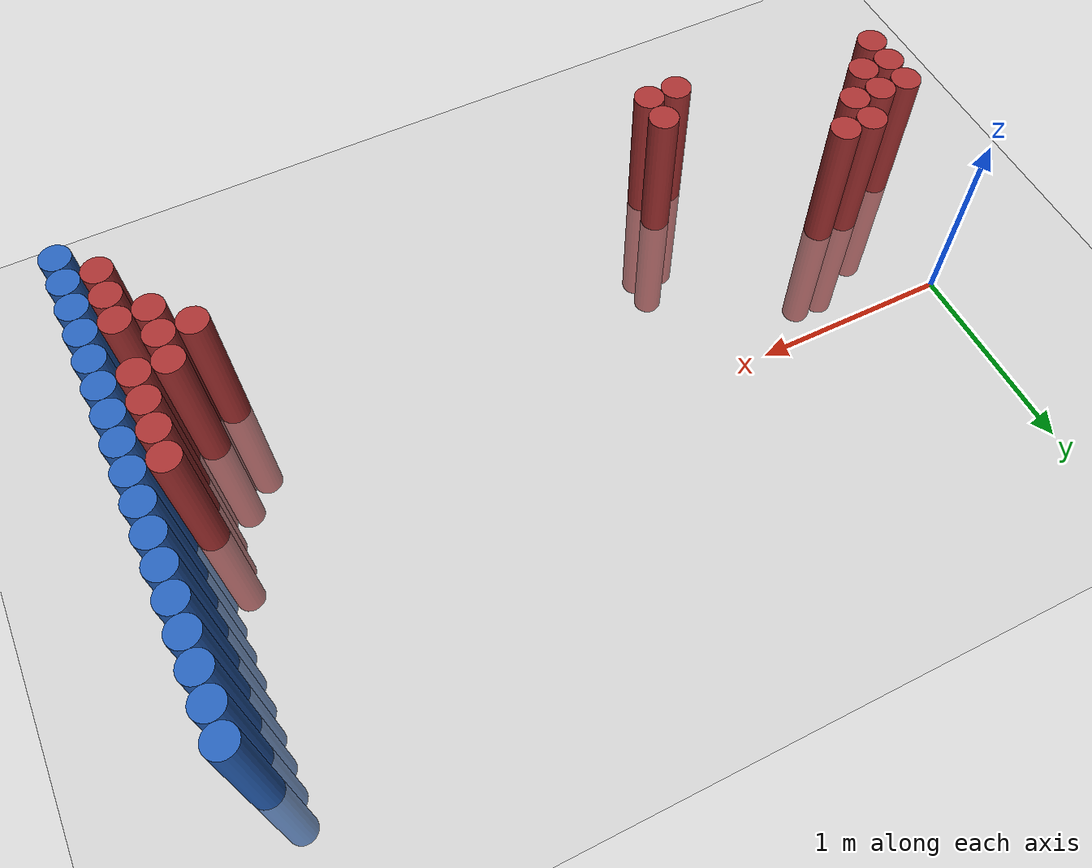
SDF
<sdf version="1.6">
 <world name="default">
  <model name="ground_plane">
   <static>1</static>
   <link name="link">
    <collision name="collision">
     <geometry><plane><normal>0 0 1</normal><size>100 100</size></plane></geometry>
     <surface><friction><ode><mu>100</mu><mu2>50</mu2></ode></friction></surface>
    </collision>
    <visual name="visual">
     <cast_shadows>0</cast_shadows>
     <geometry><plane><normal>0 0 1</normal><size>100 100</size></plane></geometry>
     <material>
      <script><uri>file://media/materials/scripts/gazebo.material</uri><name>Gazebo/Grey</name></script>
     </material>
    </visual>
   </link>
  </model>
  <model name="unit_cylinder_96">
   <static>1</static>
   <pose>3.925000 -1.325000 0.000000 0.000000 0.000000 0.000000</pose>
   <link name="link">
    <inertial>
     <mass>1</mass>
     <inertia><ixx>0.145833</ixx><ixy>0</ixy><ixz>0</ixz><iyy>0.145833</iyy><iyz>0</iyz><izz>0.125</izz></inertia>
    </inertial>
    <collision name="collision">
     <geometry><cylinder><radius>0.075000</radius><length>1.5</length></cylinder></geometry>
    </collision>
    <visual name="visual">
     <geometry><cylinder><radius>0.075000</radius><length>1.5</length></cylinder></geometry>
     <material>
      <ambient>0.152000 0.379000 0.720000 1</ambient>
      <diffuse>0.152000 0.379000 0.720000 1</diffuse>
     </material>
     <material>
      <script><name>Gazebo/Grey</name><uri>file://media/materials/scripts/gazebo.material</uri></script>
     </material>
    </visual>
   </link>
  </model>
  <model name="unit_cylinder_98">
   <static>1</static>
   <pose>3.925000 -1.175000 0.000000 0.000000 0.000000 0.000000</pose>
   <link name="link">
    <inertial>
     <mass>1</mass>
     <inertia><ixx>0.145833</ixx><ixy>0</ixy><ixz>0</ixz><iyy>0.145833</iyy><iyz>0</iyz><izz>0.125</izz></inertia>
    </inertial>
    <collision name="collision">
     <geometry><cylinder><radius>0.075000</radius><length>1.5</length></cylinder></geometry>
    </collision>
    <visual name="visual">
     <geometry><cylinder><radius>0.075000</radius><length>1.5</length></cylinder></geometry>
     <material>
      <ambient>0.152000 0.379000 0.720000 1</ambient>
      <diffuse>0.152000 0.379000 0.720000 1</diffuse>
     </material>
     <material>
      <script><name>Gazebo/Grey</name><uri>file://media/materials/scripts/gazebo.material</uri></script>
     </material>
    </visual>
   </link>
  </model>
  <model name="unit_cylinder_100">
   <static>1</static>
   <pose>3.925000 -1.025000 0.000000 0.000000 0.000000 0.000000</pose>
   <link name="link">
    <inertial>
     <mass>1</mass>
     <inertia><ixx>0.145833</ixx><ixy>0</ixy><ixz>0</ixz><iyy>0.145833</iyy><iyz>0</iyz><izz>0.125</izz></inertia>
    </inertial>
    <collision name="collision">
     <geometry><cylinder><radius>0.075000</radius><length>1.5</length></cylinder></geometry>
    </collision>
    <visual name="visual">
     <geometry><cylinder><radius>0.075000</radius><length>1.5</length></cylinder></geometry>
     <material>
      <ambient>0.152000 0.379000 0.720000 1</ambient>
      <diffuse>0.152000 0.379000 0.720000 1</diffuse>
     </material>
     <material>
      <script><name>Gazebo/Grey</name><uri>file://media/materials/scripts/gazebo.material</uri></script>
     </material>
    </visual>
   </link>
  </model>
  <model name="unit_cylinder_102">
   <static>1</static>
   <pose>3.925000 -0.875000 0.000000 0.000000 0.000000 0.000000</pose>
   <link name="link">
    <inertial>
     <mass>1</mass>
     <inertia><ixx>0.145833</ixx><ixy>0</ixy><ixz>0</ixz><iyy>0.145833</iyy><iyz>0</iyz><izz>0.125</izz></inertia>
    </inertial>
    <collision name="collision">
     <geometry><cylinder><radius>0.075000</radius><length>1.5</length></cylinder></geometry>
    </collision>
    <visual name="visual">
     <geometry><cylinder><radius>0.075000</radius><length>1.5</length></cylinder></geometry>
     <material>
      <ambient>0.152000 0.379000 0.720000 1</ambient>
      <diffuse>0.152000 0.379000 0.720000 1</diffuse>
     </material>
     <material>
      <script><name>Gazebo/Grey</name><uri>file://media/materials/scripts/gazebo.material</uri></script>
     </material>
    </visual>
   </link>
  </model>
  <model name="unit_cylinder_104">
   <static>1</static>
   <pose>3.925000 -0.725000 0.000000 0.000000 0.000000 0.000000</pose>
   <link name="link">
    <inertial>
     <mass>1</mass>
     <inertia><ixx>0.145833</ixx><ixy>0</ixy><ixz>0</ixz><iyy>0.145833</iyy><iyz>0</iyz><izz>0.125</izz></inertia>
    </inertial>
    <collision name="collision">
     <geometry><cylinder><radius>0.075000</radius><length>1.5</length></cylinder></geometry>
    </collision>
    <visual name="visual">
     <geometry><cylinder><radius>0.075000</radius><length>1.5</length></cylinder></geometry>
     <material>
      <ambient>0.152000 0.379000 0.720000 1</ambient>
      <diffuse>0.152000 0.379000 0.720000 1</diffuse>
     </material>
     <material>
      <script><name>Gazebo/Grey</name><uri>file://media/materials/scripts/gazebo.material</uri></script>
     </material>
    </visual>
   </link>
  </model>
  <model name="unit_cylinder_106">
   <static>1</static>
   <pose>3.925000 -0.575000 0.000000 0.000000 0.000000 0.000000</pose>
   <link name="link">
    <inertial>
     <mass>1</mass>
     <inertia><ixx>0.145833</ixx><ixy>0</ixy><ixz>0</ixz><iyy>0.145833</iyy><iyz>0</iyz><izz>0.125</izz></inertia>
    </inertial>
    <collision name="collision">
     <geometry><cylinder><radius>0.075000</radius><length>1.5</length></cylinder></geometry>
    </collision>
    <visual name="visual">
     <geometry><cylinder><radius>0.075000</radius><length>1.5</length></cylinder></geometry>
     <material>
      <ambient>0.152000 0.379000 0.720000 1</ambient>
      <diffuse>0.152000 0.379000 0.720000 1</diffuse>
     </material>
     <material>
      <script><name>Gazebo/Grey</name><uri>file://media/materials/scripts/gazebo.material</uri></script>
     </material>
    </visual>
   </link>
  </model>
  <model name="unit_cylinder_108">
   <static>1</static>
   <pose>3.925000 -0.425000 0.000000 0.000000 0.000000 0.000000</pose>
   <link name="link">
    <inertial>
     <mass>1</mass>
     <inertia><ixx>0.145833</ixx><ixy>0</ixy><ixz>0</ixz><iyy>0.145833</iyy><iyz>0</iyz><izz>0.125</izz></inertia>
    </inertial>
    <collision name="collision">
     <geometry><cylinder><radius>0.075000</radius><length>1.5</length></cylinder></geometry>
    </collision>
    <visual name="visual">
     <geometry><cylinder><radius>0.075000</radius><length>1.5</length></cylinder></geometry>
     <material>
      <ambient>0.152000 0.379000 0.720000 1</ambient>
      <diffuse>0.152000 0.379000 0.720000 1</diffuse>
     </material>
     <material>
      <script><name>Gazebo/Grey</name><uri>file://media/materials/scripts/gazebo.material</uri></script>
     </material>
    </visual>
   </link>
  </model>
  <model name="unit_cylinder_110">
   <static>1</static>
   <pose>3.925000 -0.275000 0.000000 0.000000 0.000000 0.000000</pose>
   <link name="link">
    <inertial>
     <mass>1</mass>
     <inertia><ixx>0.145833</ixx><ixy>0</ixy><ixz>0</ixz><iyy>0.145833</iyy><iyz>0</iyz><izz>0.125</izz></inertia>
    </inertial>
    <collision name="collision">
     <geometry><cylinder><radius>0.075000</radius><length>1.5</length></cylinder></geometry>
    </collision>
    <visual name="visual">
     <geometry><cylinder><radius>0.075000</radius><length>1.5</length></cylinder></geometry>
     <material>
      <ambient>0.152000 0.379000 0.720000 1</ambient>
      <diffuse>0.152000 0.379000 0.720000 1</diffuse>
     </material>
     <material>
      <script><name>Gazebo/Grey</name><uri>file://media/materials/scripts/gazebo.material</uri></script>
     </material>
    </visual>
   </link>
  </model>
  <model name="unit_cylinder_112">
   <static>1</static>
   <pose>3.925000 -0.125000 0.000000 0.000000 0.000000 0.000000</pose>
   <link name="link">
    <inertial>
     <mass>1</mass>
     <inertia><ixx>0.145833</ixx><ixy>0</ixy><ixz>0</ixz><iyy>0.145833</iyy><iyz>0</iyz><izz>0.125</izz></inertia>
    </inertial>
    <collision name="collision">
     <geometry><cylinder><radius>0.075000</radius><length>1.5</length></cylinder></geometry>
    </collision>
    <visual name="visual">
     <geometry><cylinder><radius>0.075000</radius><length>1.5</length></cylinder></geometry>
     <material>
      <ambient>0.152000 0.379000 0.720000 1</ambient>
      <diffuse>0.152000 0.379000 0.720000 1</diffuse>
     </material>
     <material>
      <script><name>Gazebo/Grey</name><uri>file://media/materials/scripts/gazebo.material</uri></script>
     </material>
    </visual>
   </link>
  </model>
  <model name="unit_cylinder_114">
   <static>1</static>
   <pose>3.925000 0.025000 0.000000 0.000000 0.000000 0.000000</pose>
   <link name="link">
    <inertial>
     <mass>1</mass>
     <inertia><ixx>0.145833</ixx><ixy>0</ixy><ixz>0</ixz><iyy>0.145833</iyy><iyz>0</iyz><izz>0.125</izz></inertia>
    </inertial>
    <collision name="collision">
     <geometry><cylinder><radius>0.075000</radius><length>1.5</length></cylinder></geometry>
    </collision>
    <visual name="visual">
     <geometry><cylinder><radius>0.075000</radius><length>1.5</length></cylinder></geometry>
     <material>
      <ambient>0.152000 0.379000 0.720000 1</ambient>
      <diffuse>0.152000 0.379000 0.720000 1</diffuse>
     </material>
     <material>
      <script><name>Gazebo/Grey</name><uri>file://media/materials/scripts/gazebo.material</uri></script>
     </material>
    </visual>
   </link>
  </model>
  <model name="unit_cylinder_116">
   <static>1</static>
   <pose>3.925000 0.175000 0.000000 0.000000 0.000000 0.000000</pose>
   <link name="link">
    <inertial>
     <mass>1</mass>
     <inertia><ixx>0.145833</ixx><ixy>0</ixy><ixz>0</ixz><iyy>0.145833</iyy><iyz>0</iyz><izz>0.125</izz></inertia>
    </inertial>
    <collision name="collision">
     <geometry><cylinder><radius>0.075000</radius><length>1.5</length></cylinder></geometry>
    </collision>
    <visual name="visual">
     <geometry><cylinder><radius>0.075000</radius><length>1.5</length></cylinder></geometry>
     <material>
      <ambient>0.152000 0.379000 0.720000 1</ambient>
      <diffuse>0.152000 0.379000 0.720000 1</diffuse>
     </material>
     <material>
      <script><name>Gazebo/Grey</name><uri>file://media/materials/scripts/gazebo.material</uri></script>
     </material>
    </visual>
   </link>
  </model>
  <model name="unit_cylinder_118">
   <static>1</static>
   <pose>3.925000 0.325000 0.000000 0.000000 0.000000 0.000000</pose>
   <link name="link">
    <inertial>
     <mass>1</mass>
     <inertia><ixx>0.145833</ixx><ixy>0</ixy><ixz>0</ixz><iyy>0.145833</iyy><iyz>0</iyz><izz>0.125</izz></inertia>
    </inertial>
    <collision name="collision">
     <geometry><cylinder><radius>0.075000</radius><length>1.5</length></cylinder></geometry>
    </collision>
    <visual name="visual">
     <geometry><cylinder><radius>0.075000</radius><length>1.5</length></cylinder></geometry>
     <material>
      <ambient>0.152000 0.379000 0.720000 1</ambient>
      <diffuse>0.152000 0.379000 0.720000 1</diffuse>
     </material>
     <material>
      <script><name>Gazebo/Grey</name><uri>file://media/materials/scripts/gazebo.material</uri></script>
     </material>
    </visual>
   </link>
  </model>
  <model name="unit_cylinder_120">
   <static>1</static>
   <pose>3.925000 0.475000 0.000000 0.000000 0.000000 0.000000</pose>
   <link name="link">
    <inertial>
     <mass>1</mass>
     <inertia><ixx>0.145833</ixx><ixy>0</ixy><ixz>0</ixz><iyy>0.145833</iyy><iyz>0</iyz><izz>0.125</izz></inertia>
    </inertial>
    <collision name="collision">
     <geometry><cylinder><radius>0.075000</radius><length>1.5</length></cylinder></geometry>
    </collision>
    <visual name="visual">
     <geometry><cylinder><radius>0.075000</radius><length>1.5</length></cylinder></geometry>
     <material>
      <ambient>0.152000 0.379000 0.720000 1</ambient>
      <diffuse>0.152000 0.379000 0.720000 1</diffuse>
     </material>
     <material>
      <script><name>Gazebo/Grey</name><uri>file://media/materials/scripts/gazebo.material</uri></script>
     </material>
    </visual>
   </link>
  </model>
  <model name="unit_cylinder_122">
   <static>1</static>
   <pose>3.925000 0.625000 0.000000 0.000000 0.000000 0.000000</pose>
   <link name="link">
    <inertial>
     <mass>1</mass>
     <inertia><ixx>0.145833</ixx><ixy>0</ixy><ixz>0</ixz><iyy>0.145833</iyy><iyz>0</iyz><izz>0.125</izz></inertia>
    </inertial>
    <collision name="collision">
     <geometry><cylinder><radius>0.075000</radius><length>1.5</length></cylinder></geometry>
    </collision>
    <visual name="visual">
     <geometry><cylinder><radius>0.075000</radius><length>1.5</length></cylinder></geometry>
     <material>
      <ambient>0.152000 0.379000 0.720000 1</ambient>
      <diffuse>0.152000 0.379000 0.720000 1</diffuse>
     </material>
     <material>
      <script><name>Gazebo/Grey</name><uri>file://media/materials/scripts/gazebo.material</uri></script>
     </material>
    </visual>
   </link>
  </model>
  <model name="unit_cylinder_124">
   <static>1</static>
   <pose>3.925000 0.775000 0.000000 0.000000 0.000000 0.000000</pose>
   <link name="link">
    <inertial>
     <mass>1</mass>
     <inertia><ixx>0.145833</ixx><ixy>0</ixy><ixz>0</ixz><iyy>0.145833</iyy><iyz>0</iyz><izz>0.125</izz></inertia>
    </inertial>
    <collision name="collision">
     <geometry><cylinder><radius>0.075000</radius><length>1.5</length></cylinder></geometry>
    </collision>
    <visual name="visual">
     <geometry><cylinder><radius>0.075000</radius><length>1.5</length></cylinder></geometry>
     <material>
      <ambient>0.152000 0.379000 0.720000 1</ambient>
      <diffuse>0.152000 0.379000 0.720000 1</diffuse>
     </material>
     <material>
      <script><name>Gazebo/Grey</name><uri>file://media/materials/scripts/gazebo.material</uri></script>
     </material>
    </visual>
   </link>
  </model>
  <model name="unit_cylinder_126">
   <static>1</static>
   <pose>3.925000 0.925000 0.000000 0.000000 0.000000 0.000000</pose>
   <link name="link">
    <inertial>
     <mass>1</mass>
     <inertia><ixx>0.145833</ixx><ixy>0</ixy><ixz>0</ixz><iyy>0.145833</iyy><iyz>0</iyz><izz>0.125</izz></inertia>
    </inertial>
    <collision name="collision">
     <geometry><cylinder><radius>0.075000</radius><length>1.5</length></cylinder></geometry>
    </collision>
    <visual name="visual">
     <geometry><cylinder><radius>0.075000</radius><length>1.5</length></cylinder></geometry>
     <material>
      <ambient>0.152000 0.379000 0.720000 1</ambient>
      <diffuse>0.152000 0.379000 0.720000 1</diffuse>
     </material>
     <material>
      <script><name>Gazebo/Grey</name><uri>file://media/materials/scripts/gazebo.material</uri></script>
     </material>
    </visual>
   </link>
  </model>
  <model name="unit_cylinder_315">
   <static>1</static>
   <pose>-0.125000 -1.025000 0.000000 0.000000 0.000000 0.000000</pose>
   <link name="link">
    <inertial>
     <mass>1</mass>
     <inertia><ixx>0.145833</ixx><ixy>0</ixy><ixz>0</ixz><iyy>0.145833</iyy><iyz>0</iyz><izz>0.125</izz></inertia>
    </inertial>
    <collision name="collision">
     <geometry><cylinder><radius>0.075000</radius><length>1.5</length></cylinder></geometry>
    </collision>
    <visual name="visual">
     <geometry><cylinder><radius>0.075000</radius><length>1.5</length></cylinder></geometry>
     <material>
      <ambient>0.648000 0.192000 0.192000 1</ambient>
      <diffuse>0.648000 0.192000 0.192000 1</diffuse>
     </material>
     <material>
      <script><name>Gazebo/Grey</name><uri>file://media/materials/scripts/gazebo.material</uri></script>
     </material>
    </visual>
   </link>
  </model>
  <model name="unit_cylinder_316">
   <static>1</static>
   <pose>-0.125000 -0.875000 0.000000 0.000000 0.000000 0.000000</pose>
   <link name="link">
    <inertial>
     <mass>1</mass>
     <inertia><ixx>0.145833</ixx><ixy>0</ixy><ixz>0</ixz><iyy>0.145833</iyy><iyz>0</iyz><izz>0.125</izz></inertia>
    </inertial>
    <collision name="collision">
     <geometry><cylinder><radius>0.075000</radius><length>1.5</length></cylinder></geometry>
    </collision>
    <visual name="visual">
     <geometry><cylinder><radius>0.075000</radius><length>1.5</length></cylinder></geometry>
     <material>
      <ambient>0.648000 0.192000 0.192000 1</ambient>
      <diffuse>0.648000 0.192000 0.192000 1</diffuse>
     </material>
     <material>
      <script><name>Gazebo/Grey</name><uri>file://media/materials/scripts/gazebo.material</uri></script>
     </material>
    </visual>
   </link>
  </model>
  <model name="unit_cylinder_317">
   <static>1</static>
   <pose>-0.125000 -0.725000 0.000000 0.000000 0.000000 0.000000</pose>
   <link name="link">
    <inertial>
     <mass>1</mass>
     <inertia><ixx>0.145833</ixx><ixy>0</ixy><ixz>0</ixz><iyy>0.145833</iyy><iyz>0</iyz><izz>0.125</izz></inertia>
    </inertial>
    <collision name="collision">
     <geometry><cylinder><radius>0.075000</radius><length>1.5</length></cylinder></geometry>
    </collision>
    <visual name="visual">
     <geometry><cylinder><radius>0.075000</radius><length>1.5</length></cylinder></geometry>
     <material>
      <ambient>0.648000 0.192000 0.192000 1</ambient>
      <diffuse>0.648000 0.192000 0.192000 1</diffuse>
     </material>
     <material>
      <script><name>Gazebo/Grey</name><uri>file://media/materials/scripts/gazebo.material</uri></script>
     </material>
    </visual>
   </link>
  </model>
  <model name="unit_cylinder_318">
   <static>1</static>
   <pose>0.025000 -0.875000 0.000000 0.000000 0.000000 0.000000</pose>
   <link name="link">
    <inertial>
     <mass>1</mass>
     <inertia><ixx>0.145833</ixx><ixy>0</ixy><ixz>0</ixz><iyy>0.145833</iyy><iyz>0</iyz><izz>0.125</izz></inertia>
    </inertial>
    <collision name="collision">
     <geometry><cylinder><radius>0.075000</radius><length>1.5</length></cylinder></geometry>
    </collision>
    <visual name="visual">
     <geometry><cylinder><radius>0.075000</radius><length>1.5</length></cylinder></geometry>
     <material>
      <ambient>0.648000 0.192000 0.192000 1</ambient>
      <diffuse>0.648000 0.192000 0.192000 1</diffuse>
     </material>
     <material>
      <script><name>Gazebo/Grey</name><uri>file://media/materials/scripts/gazebo.material</uri></script>
     </material>
    </visual>
   </link>
  </model>
  <model name="unit_cylinder_319">
   <static>1</static>
   <pose>0.025000 -0.725000 0.000000 0.000000 0.000000 0.000000</pose>
   <link name="link">
    <inertial>
     <mass>1</mass>
     <inertia><ixx>0.145833</ixx><ixy>0</ixy><ixz>0</ixz><iyy>0.145833</iyy><iyz>0</iyz><izz>0.125</izz></inertia>
    </inertial>
    <collision name="collision">
     <geometry><cylinder><radius>0.075000</radius><length>1.5</length></cylinder></geometry>
    </collision>
    <visual name="visual">
     <geometry><cylinder><radius>0.075000</radius><length>1.5</length></cylinder></geometry>
     <material>
      <ambient>0.648000 0.192000 0.192000 1</ambient>
      <diffuse>0.648000 0.192000 0.192000 1</diffuse>
     </material>
     <material>
      <script><name>Gazebo/Grey</name><uri>file://media/materials/scripts/gazebo.material</uri></script>
     </material>
    </visual>
   </link>
  </model>
  <model name="unit_cylinder_320">
   <static>1</static>
   <pose>0.175000 -0.725000 0.000000 0.000000 0.000000 0.000000</pose>
   <link name="link">
    <inertial>
     <mass>1</mass>
     <inertia><ixx>0.145833</ixx><ixy>0</ixy><ixz>0</ixz><iyy>0.145833</iyy><iyz>0</iyz><izz>0.125</izz></inertia>
    </inertial>
    <collision name="collision">
     <geometry><cylinder><radius>0.075000</radius><length>1.5</length></cylinder></geometry>
    </collision>
    <visual name="visual">
     <geometry><cylinder><radius>0.075000</radius><length>1.5</length></cylinder></geometry>
     <material>
      <ambient>0.648000 0.192000 0.192000 1</ambient>
      <diffuse>0.648000 0.192000 0.192000 1</diffuse>
     </material>
     <material>
      <script><name>Gazebo/Grey</name><uri>file://media/materials/scripts/gazebo.material</uri></script>
     </material>
    </visual>
   </link>
  </model>
  <model name="unit_cylinder_321">
   <static>1</static>
   <pose>0.175000 -0.575000 0.000000 0.000000 0.000000 0.000000</pose>
   <link name="link">
    <inertial>
     <mass>1</mass>
     <inertia><ixx>0.145833</ixx><ixy>0</ixy><ixz>0</ixz><iyy>0.145833</iyy><iyz>0</iyz><izz>0.125</izz></inertia>
    </inertial>
    <collision name="collision">
     <geometry><cylinder><radius>0.075000</radius><length>1.5</length></cylinder></geometry>
    </collision>
    <visual name="visual">
     <geometry><cylinder><radius>0.075000</radius><length>1.5</length></cylinder></geometry>
     <material>
      <ambient>0.648000 0.192000 0.192000 1</ambient>
      <diffuse>0.648000 0.192000 0.192000 1</diffuse>
     </material>
     <material>
      <script><name>Gazebo/Grey</name><uri>file://media/materials/scripts/gazebo.material</uri></script>
     </material>
    </visual>
   </link>
  </model>
  <model name="unit_cylinder_324">
   <static>1</static>
   <pose>0.325000 -0.575000 0.000000 0.000000 0.000000 0.000000</pose>
   <link name="link">
    <inertial>
     <mass>1</mass>
     <inertia><ixx>0.145833</ixx><ixy>0</ixy><ixz>0</ixz><iyy>0.145833</iyy><iyz>0</iyz><izz>0.125</izz></inertia>
    </inertial>
    <collision name="collision">
     <geometry><cylinder><radius>0.075000</radius><length>1.5</length></cylinder></geometry>
    </collision>
    <visual name="visual">
     <geometry><cylinder><radius>0.075000</radius><length>1.5</length></cylinder></geometry>
     <material>
      <ambient>0.648000 0.192000 0.192000 1</ambient>
      <diffuse>0.648000 0.192000 0.192000 1</diffuse>
     </material>
     <material>
      <script><name>Gazebo/Grey</name><uri>file://media/materials/scripts/gazebo.material</uri></script>
     </material>
    </visual>
   </link>
  </model>
  <model name="unit_cylinder_327">
   <static>1</static>
   <pose>0.925000 -1.175000 0.000000 0.000000 0.000000 0.000000</pose>
   <link name="link">
    <inertial>
     <mass>1</mass>
     <inertia><ixx>0.145833</ixx><ixy>0</ixy><ixz>0</ixz><iyy>0.145833</iyy><iyz>0</iyz><izz>0.125</izz></inertia>
    </inertial>
    <collision name="collision">
     <geometry><cylinder><radius>0.075000</radius><length>1.5</length></cylinder></geometry>
    </collision>
    <visual name="visual">
     <geometry><cylinder><radius>0.075000</radius><length>1.5</length></cylinder></geometry>
     <material>
      <ambient>0.648000 0.192000 0.192000 1</ambient>
      <diffuse>0.648000 0.192000 0.192000 1</diffuse>
     </material>
     <material>
      <script><name>Gazebo/Grey</name><uri>file://media/materials/scripts/gazebo.material</uri></script>
     </material>
    </visual>
   </link>
  </model>
  <model name="unit_cylinder_331">
   <static>1</static>
   <pose>1.075000 -1.175000 0.000000 0.000000 0.000000 0.000000</pose>
   <link name="link">
    <inertial>
     <mass>1</mass>
     <inertia><ixx>0.145833</ixx><ixy>0</ixy><ixz>0</ixz><iyy>0.145833</iyy><iyz>0</iyz><izz>0.125</izz></inertia>
    </inertial>
    <collision name="collision">
     <geometry><cylinder><radius>0.075000</radius><length>1.5</length></cylinder></geometry>
    </collision>
    <visual name="visual">
     <geometry><cylinder><radius>0.075000</radius><length>1.5</length></cylinder></geometry>
     <material>
      <ambient>0.648000 0.192000 0.192000 1</ambient>
      <diffuse>0.648000 0.192000 0.192000 1</diffuse>
     </material>
     <material>
      <script><name>Gazebo/Grey</name><uri>file://media/materials/scripts/gazebo.material</uri></script>
     </material>
    </visual>
   </link>
  </model>
  <model name="unit_cylinder_332">
   <static>1</static>
   <pose>1.075000 -1.025000 0.000000 0.000000 0.000000 0.000000</pose>
   <link name="link">
    <inertial>
     <mass>1</mass>
     <inertia><ixx>0.145833</ixx><ixy>0</ixy><ixz>0</ixz><iyy>0.145833</iyy><iyz>0</iyz><izz>0.125</izz></inertia>
    </inertial>
    <collision name="collision">
     <geometry><cylinder><radius>0.075000</radius><length>1.5</length></cylinder></geometry>
    </collision>
    <visual name="visual">
     <geometry><cylinder><radius>0.075000</radius><length>1.5</length></cylinder></geometry>
     <material>
      <ambient>0.648000 0.192000 0.192000 1</ambient>
      <diffuse>0.648000 0.192000 0.192000 1</diffuse>
     </material>
     <material>
      <script><name>Gazebo/Grey</name><uri>file://media/materials/scripts/gazebo.material</uri></script>
     </material>
    </visual>
   </link>
  </model>
  <model name="unit_cylinder_359">
   <static>1</static>
   <pose>3.475000 -0.875000 0.000000 0.000000 0.000000 0.000000</pose>
   <link name="link">
    <inertial>
     <mass>1</mass>
     <inertia><ixx>0.145833</ixx><ixy>0</ixy><ixz>0</ixz><iyy>0.145833</iyy><iyz>0</iyz><izz>0.125</izz></inertia>
    </inertial>
    <collision name="collision">
     <geometry><cylinder><radius>0.075000</radius><length>1.5</length></cylinder></geometry>
    </collision>
    <visual name="visual">
     <geometry><cylinder><radius>0.075000</radius><length>1.5</length></cylinder></geometry>
     <material>
      <ambient>0.648000 0.192000 0.192000 1</ambient>
      <diffuse>0.648000 0.192000 0.192000 1</diffuse>
     </material>
     <material>
      <script><name>Gazebo/Grey</name><uri>file://media/materials/scripts/gazebo.material</uri></script>
     </material>
    </visual>
   </link>
  </model>
  <model name="unit_cylinder_362">
   <static>1</static>
   <pose>3.625000 -1.025000 0.000000 0.000000 0.000000 0.000000</pose>
   <link name="link">
    <inertial>
     <mass>1</mass>
     <inertia><ixx>0.145833</ixx><ixy>0</ixy><ixz>0</ixz><iyy>0.145833</iyy><iyz>0</iyz><izz>0.125</izz></inertia>
    </inertial>
    <collision name="collision">
     <geometry><cylinder><radius>0.075000</radius><length>1.5</length></cylinder></geometry>
    </collision>
    <visual name="visual">
     <geometry><cylinder><radius>0.075000</radius><length>1.5</length></cylinder></geometry>
     <material>
      <ambient>0.648000 0.192000 0.192000 1</ambient>
      <diffuse>0.648000 0.192000 0.192000 1</diffuse>
     </material>
     <material>
      <script><name>Gazebo/Grey</name><uri>file://media/materials/scripts/gazebo.material</uri></script>
     </material>
    </visual>
   </link>
  </model>
  <model name="unit_cylinder_363">
   <static>1</static>
   <pose>3.625000 -0.875000 0.000000 0.000000 0.000000 0.000000</pose>
   <link name="link">
    <inertial>
     <mass>1</mass>
     <inertia><ixx>0.145833</ixx><ixy>0</ixy><ixz>0</ixz><iyy>0.145833</iyy><iyz>0</iyz><izz>0.125</izz></inertia>
    </inertial>
    <collision name="collision">
     <geometry><cylinder><radius>0.075000</radius><length>1.5</length></cylinder></geometry>
    </collision>
    <visual name="visual">
     <geometry><cylinder><radius>0.075000</radius><length>1.5</length></cylinder></geometry>
     <material>
      <ambient>0.648000 0.192000 0.192000 1</ambient>
      <diffuse>0.648000 0.192000 0.192000 1</diffuse>
     </material>
     <material>
      <script><name>Gazebo/Grey</name><uri>file://media/materials/scripts/gazebo.material</uri></script>
     </material>
    </visual>
   </link>
  </model>
  <model name="unit_cylinder_364">
   <static>1</static>
   <pose>3.625000 -0.725000 0.000000 0.000000 0.000000 0.000000</pose>
   <link name="link">
    <inertial>
     <mass>1</mass>
     <inertia><ixx>0.145833</ixx><ixy>0</ixy><ixz>0</ixz><iyy>0.145833</iyy><iyz>0</iyz><izz>0.125</izz></inertia>
    </inertial>
    <collision name="collision">
     <geometry><cylinder><radius>0.075000</radius><length>1.5</length></cylinder></geometry>
    </collision>
    <visual name="visual">
     <geometry><cylinder><radius>0.075000</radius><length>1.5</length></cylinder></geometry>
     <material>
      <ambient>0.648000 0.192000 0.192000 1</ambient>
      <diffuse>0.648000 0.192000 0.192000 1</diffuse>
     </material>
     <material>
      <script><name>Gazebo/Grey</name><uri>file://media/materials/scripts/gazebo.material</uri></script>
     </material>
    </visual>
   </link>
  </model>
  <model name="unit_cylinder_367">
   <static>1</static>
   <pose>3.775000 -1.325000 0.000000 0.000000 0.000000 0.000000</pose>
   <link name="link">
    <inertial>
     <mass>1</mass>
     <inertia><ixx>0.145833</ixx><ixy>0</ixy><ixz>0</ixz><iyy>0.145833</iyy><iyz>0</iyz><izz>0.125</izz></inertia>
    </inertial>
    <collision name="collision">
     <geometry><cylinder><radius>0.075000</radius><length>1.5</length></cylinder></geometry>
    </collision>
    <visual name="visual">
     <geometry><cylinder><radius>0.075000</radius><length>1.5</length></cylinder></geometry>
     <material>
      <ambient>0.648000 0.192000 0.192000 1</ambient>
      <diffuse>0.648000 0.192000 0.192000 1</diffuse>
     </material>
     <material>
      <script><name>Gazebo/Grey</name><uri>file://media/materials/scripts/gazebo.material</uri></script>
     </material>
    </visual>
   </link>
  </model>
  <model name="unit_cylinder_368">
   <static>1</static>
   <pose>3.775000 -1.175000 0.000000 0.000000 0.000000 0.000000</pose>
   <link name="link">
    <inertial>
     <mass>1</mass>
     <inertia><ixx>0.145833</ixx><ixy>0</ixy><ixz>0</ixz><iyy>0.145833</iyy><iyz>0</iyz><izz>0.125</izz></inertia>
    </inertial>
    <collision name="collision">
     <geometry><cylinder><radius>0.075000</radius><length>1.5</length></cylinder></geometry>
    </collision>
    <visual name="visual">
     <geometry><cylinder><radius>0.075000</radius><length>1.5</length></cylinder></geometry>
     <material>
      <ambient>0.648000 0.192000 0.192000 1</ambient>
      <diffuse>0.648000 0.192000 0.192000 1</diffuse>
     </material>
     <material>
      <script><name>Gazebo/Grey</name><uri>file://media/materials/scripts/gazebo.material</uri></script>
     </material>
    </visual>
   </link>
  </model>
  <model name="unit_cylinder_369">
   <static>1</static>
   <pose>3.775000 -1.025000 0.000000 0.000000 0.000000 0.000000</pose>
   <link name="link">
    <inertial>
     <mass>1</mass>
     <inertia><ixx>0.145833</ixx><ixy>0</ixy><ixz>0</ixz><iyy>0.145833</iyy><iyz>0</iyz><izz>0.125</izz></inertia>
    </inertial>
    <collision name="collision">
     <geometry><cylinder><radius>0.075000</radius><length>1.5</length></cylinder></geometry>
    </collision>
    <visual name="visual">
     <geometry><cylinder><radius>0.075000</radius><length>1.5</length></cylinder></geometry>
     <material>
      <ambient>0.648000 0.192000 0.192000 1</ambient>
      <diffuse>0.648000 0.192000 0.192000 1</diffuse>
     </material>
     <material>
      <script><name>Gazebo/Grey</name><uri>file://media/materials/scripts/gazebo.material</uri></script>
     </material>
    </visual>
   </link>
  </model>
  <model name="unit_cylinder_370">
   <static>1</static>
   <pose>3.775000 -0.725000 0.000000 0.000000 0.000000 0.000000</pose>
   <link name="link">
    <inertial>
     <mass>1</mass>
     <inertia><ixx>0.145833</ixx><ixy>0</ixy><ixz>0</ixz><iyy>0.145833</iyy><iyz>0</iyz><izz>0.125</izz></inertia>
    </inertial>
    <collision name="collision">
     <geometry><cylinder><radius>0.075000</radius><length>1.5</length></cylinder></geometry>
    </collision>
    <visual name="visual">
     <geometry><cylinder><radius>0.075000</radius><length>1.5</length></cylinder></geometry>
     <material>
      <ambient>0.648000 0.192000 0.192000 1</ambient>
      <diffuse>0.648000 0.192000 0.192000 1</diffuse>
     </material>
     <material>
      <script><name>Gazebo/Grey</name><uri>file://media/materials/scripts/gazebo.material</uri></script>
     </material>
    </visual>
   </link>
  </model>
  <model name="unit_cylinder_371">
   <static>1</static>
   <pose>3.775000 -0.575000 0.000000 0.000000 0.000000 0.000000</pose>
   <link name="link">
    <inertial>
     <mass>1</mass>
     <inertia><ixx>0.145833</ixx><ixy>0</ixy><ixz>0</ixz><iyy>0.145833</iyy><iyz>0</iyz><izz>0.125</izz></inertia>
    </inertial>
    <collision name="collision">
     <geometry><cylinder><radius>0.075000</radius><length>1.5</length></cylinder></geometry>
    </collision>
    <visual name="visual">
     <geometry><cylinder><radius>0.075000</radius><length>1.5</length></cylinder></geometry>
     <material>
      <ambient>0.648000 0.192000 0.192000 1</ambient>
      <diffuse>0.648000 0.192000 0.192000 1</diffuse>
     </material>
     <material>
      <script><name>Gazebo/Grey</name><uri>file://media/materials/scripts/gazebo.material</uri></script>
     </material>
    </visual>
   </link>
  </model>
  <model name="unit_cylinder_372">
   <static>1</static>
   <pose>3.775000 -0.425000 0.000000 0.000000 0.000000 0.000000</pose>
   <link name="link">
    <inertial>
     <mass>1</mass>
     <inertia><ixx>0.145833</ixx><ixy>0</ixy><ixz>0</ixz><iyy>0.145833</iyy><iyz>0</iyz><izz>0.125</izz></inertia>
    </inertial>
    <collision name="collision">
     <geometry><cylinder><radius>0.075000</radius><length>1.5</length></cylinder></geometry>
    </collision>
    <visual name="visual">
     <geometry><cylinder><radius>0.075000</radius><length>1.5</length></cylinder></geometry>
     <material>
      <ambient>0.648000 0.192000 0.192000 1</ambient>
      <diffuse>0.648000 0.192000 0.192000 1</diffuse>
     </material>
     <material>
      <script><name>Gazebo/Grey</name><uri>file://media/materials/scripts/gazebo.material</uri></script>
     </material>
    </visual>
   </link>
  </model>
  <model name="unit_cylinder_373">
   <static>1</static>
   <pose>3.775000 -0.275000 0.000000 0.000000 0.000000 0.000000</pose>
   <link name="link">
    <inertial>
     <mass>1</mass>
     <inertia><ixx>0.145833</ixx><ixy>0</ixy><ixz>0</ixz><iyy>0.145833</iyy><iyz>0</iyz><izz>0.125</izz></inertia>
    </inertial>
    <collision name="collision">
     <geometry><cylinder><radius>0.075000</radius><length>1.5</length></cylinder></geometry>
    </collision>
    <visual name="visual">
     <geometry><cylinder><radius>0.075000</radius><length>1.5</length></cylinder></geometry>
     <material>
      <ambient>0.648000 0.192000 0.192000 1</ambient>
      <diffuse>0.648000 0.192000 0.192000 1</diffuse>
     </material>
     <material>
      <script><name>Gazebo/Grey</name><uri>file://media/materials/scripts/gazebo.material</uri></script>
     </material>
    </visual>
   </link>
  </model>
  <model name="unit_cylinder_384">
   <static>1</static>
   <pose>3.925000 -1.475000 0.000000 0.000000 0.000000 0.000000</pose>
   <link name="link">
    <inertial>
     <mass>1</mass>
     <inertia><ixx>0.145833</ixx><ixy>0</ixy><ixz>0</ixz><iyy>0.145833</iyy><iyz>0</iyz><izz>0.125</izz></inertia>
    </inertial>
    <collision name="collision">
     <geometry><cylinder><radius>0.075000</radius><length>1.5</length></cylinder></geometry>
    </collision>
    <visual name="visual">
     <geometry><cylinder><radius>0.075000</radius><length>1.5</length></cylinder></geometry>
     <material>
      <ambient>0.152000 0.379000 0.720000 1</ambient>
      <diffuse>0.152000 0.379000 0.720000 1</diffuse>
     </material>
     <material>
      <script><name>Gazebo/Grey</name><uri>file://media/materials/scripts/gazebo.material</uri></script>
     </material>
    </visual>
   </link>
  </model>
  <model name="unit_cylinder_385">
   <static>1</static>
   <pose>3.925000 -1.325000 0.000000 0.000000 0.000000 0.000000</pose>
   <link name="link">
    <inertial>
     <mass>1</mass>
     <inertia><ixx>0.145833</ixx><ixy>0</ixy><ixz>0</ixz><iyy>0.145833</iyy><iyz>0</iyz><izz>0.125</izz></inertia>
    </inertial>
    <collision name="collision">
     <geometry><cylinder><radius>0.075000</radius><length>1.5</length></cylinder></geometry>
    </collision>
    <visual name="visual">
     <geometry><cylinder><radius>0.075000</radius><length>1.5</length></cylinder></geometry>
     <material>
      <ambient>0.152000 0.379000 0.720000 1</ambient>
      <diffuse>0.152000 0.379000 0.720000 1</diffuse>
     </material>
     <material>
      <script><name>Gazebo/Grey</name><uri>file://media/materials/scripts/gazebo.material</uri></script>
     </material>
    </visual>
   </link>
  </model>
  <model name="unit_cylinder_386">
   <static>1</static>
   <pose>3.925000 -1.175000 0.000000 0.000000 0.000000 0.000000</pose>
   <link name="link">
    <inertial>
     <mass>1</mass>
     <inertia><ixx>0.145833</ixx><ixy>0</ixy><ixz>0</ixz><iyy>0.145833</iyy><iyz>0</iyz><izz>0.125</izz></inertia>
    </inertial>
    <collision name="collision">
     <geometry><cylinder><radius>0.075000</radius><length>1.5</length></cylinder></geometry>
    </collision>
    <visual name="visual">
     <geometry><cylinder><radius>0.075000</radius><length>1.5</length></cylinder></geometry>
     <material>
      <ambient>0.152000 0.379000 0.720000 1</ambient>
      <diffuse>0.152000 0.379000 0.720000 1</diffuse>
     </material>
     <material>
      <script><name>Gazebo/Grey</name><uri>file://media/materials/scripts/gazebo.material</uri></script>
     </material>
    </visual>
   </link>
  </model>
  <model name="unit_cylinder_387">
   <static>1</static>
   <pose>3.925000 -1.025000 0.000000 0.000000 0.000000 0.000000</pose>
   <link name="link">
    <inertial>
     <mass>1</mass>
     <inertia><ixx>0.145833</ixx><ixy>0</ixy><ixz>0</ixz><iyy>0.145833</iyy><iyz>0</iyz><izz>0.125</izz></inertia>
    </inertial>
    <collision name="collision">
     <geometry><cylinder><radius>0.075000</radius><length>1.5</length></cylinder></geometry>
    </collision>
    <visual name="visual">
     <geometry><cylinder><radius>0.075000</radius><length>1.5</length></cylinder></geometry>
     <material>
      <ambient>0.152000 0.379000 0.720000 1</ambient>
      <diffuse>0.152000 0.379000 0.720000 1</diffuse>
     </material>
     <material>
      <script><name>Gazebo/Grey</name><uri>file://media/materials/scripts/gazebo.material</uri></script>
     </material>
    </visual>
   </link>
  </model>
  <model name="unit_cylinder_388">
   <static>1</static>
   <pose>3.925000 -0.875000 0.000000 0.000000 0.000000 0.000000</pose>
   <link name="link">
    <inertial>
     <mass>1</mass>
     <inertia><ixx>0.145833</ixx><ixy>0</ixy><ixz>0</ixz><iyy>0.145833</iyy><iyz>0</iyz><izz>0.125</izz></inertia>
    </inertial>
    <collision name="collision">
     <geometry><cylinder><radius>0.075000</radius><length>1.5</length></cylinder></geometry>
    </collision>
    <visual name="visual">
     <geometry><cylinder><radius>0.075000</radius><length>1.5</length></cylinder></geometry>
     <material>
      <ambient>0.152000 0.379000 0.720000 1</ambient>
      <diffuse>0.152000 0.379000 0.720000 1</diffuse>
     </material>
     <material>
      <script><name>Gazebo/Grey</name><uri>file://media/materials/scripts/gazebo.material</uri></script>
     </material>
    </visual>
   </link>
  </model>
  <model name="unit_cylinder_389">
   <static>1</static>
   <pose>3.925000 -0.725000 0.000000 0.000000 0.000000 0.000000</pose>
   <link name="link">
    <inertial>
     <mass>1</mass>
     <inertia><ixx>0.145833</ixx><ixy>0</ixy><ixz>0</ixz><iyy>0.145833</iyy><iyz>0</iyz><izz>0.125</izz></inertia>
    </inertial>
    <collision name="collision">
     <geometry><cylinder><radius>0.075000</radius><length>1.5</length></cylinder></geometry>
    </collision>
    <visual name="visual">
     <geometry><cylinder><radius>0.075000</radius><length>1.5</length></cylinder></geometry>
     <material>
      <ambient>0.152000 0.379000 0.720000 1</ambient>
      <diffuse>0.152000 0.379000 0.720000 1</diffuse>
     </material>
     <material>
      <script><name>Gazebo/Grey</name><uri>file://media/materials/scripts/gazebo.material</uri></script>
     </material>
    </visual>
   </link>
  </model>
  <model name="unit_cylinder_390">
   <static>1</static>
   <pose>3.925000 -0.575000 0.000000 0.000000 0.000000 0.000000</pose>
   <link name="link">
    <inertial>
     <mass>1</mass>
     <inertia><ixx>0.145833</ixx><ixy>0</ixy><ixz>0</ixz><iyy>0.145833</iyy><iyz>0</iyz><izz>0.125</izz></inertia>
    </inertial>
    <collision name="collision">
     <geometry><cylinder><radius>0.075000</radius><length>1.5</length></cylinder></geometry>
    </collision>
    <visual name="visual">
     <geometry><cylinder><radius>0.075000</radius><length>1.5</length></cylinder></geometry>
     <material>
      <ambient>0.152000 0.379000 0.720000 1</ambient>
      <diffuse>0.152000 0.379000 0.720000 1</diffuse>
     </material>
     <material>
      <script><name>Gazebo/Grey</name><uri>file://media/materials/scripts/gazebo.material</uri></script>
     </material>
    </visual>
   </link>
  </model>
  <model name="unit_cylinder_391">
   <static>1</static>
   <pose>3.925000 -0.425000 0.000000 0.000000 0.000000 0.000000</pose>
   <link name="link">
    <inertial>
     <mass>1</mass>
     <inertia><ixx>0.145833</ixx><ixy>0</ixy><ixz>0</ixz><iyy>0.145833</iyy><iyz>0</iyz><izz>0.125</izz></inertia>
    </inertial>
    <collision name="collision">
     <geometry><cylinder><radius>0.075000</radius><length>1.5</length></cylinder></geometry>
    </collision>
    <visual name="visual">
     <geometry><cylinder><radius>0.075000</radius><length>1.5</length></cylinder></geometry>
     <material>
      <ambient>0.152000 0.379000 0.720000 1</ambient>
      <diffuse>0.152000 0.379000 0.720000 1</diffuse>
     </material>
     <material>
      <script><name>Gazebo/Grey</name><uri>file://media/materials/scripts/gazebo.material</uri></script>
     </material>
    </visual>
   </link>
  </model>
  <model name="unit_cylinder_392">
   <static>1</static>
   <pose>3.925000 -0.275000 0.000000 0.000000 0.000000 0.000000</pose>
   <link name="link">
    <inertial>
     <mass>1</mass>
     <inertia><ixx>0.145833</ixx><ixy>0</ixy><ixz>0</ixz><iyy>0.145833</iyy><iyz>0</iyz><izz>0.125</izz></inertia>
    </inertial>
    <collision name="collision">
     <geometry><cylinder><radius>0.075000</radius><length>1.5</length></cylinder></geometry>
    </collision>
    <visual name="visual">
     <geometry><cylinder><radius>0.075000</radius><length>1.5</length></cylinder></geometry>
     <material>
      <ambient>0.152000 0.379000 0.720000 1</ambient>
      <diffuse>0.152000 0.379000 0.720000 1</diffuse>
     </material>
     <material>
      <script><name>Gazebo/Grey</name><uri>file://media/materials/scripts/gazebo.material</uri></script>
     </material>
    </visual>
   </link>
  </model>
  <model name="unit_cylinder_393">
   <static>1</static>
   <pose>3.925000 -0.125000 0.000000 0.000000 0.000000 0.000000</pose>
   <link name="link">
    <inertial>
     <mass>1</mass>
     <inertia><ixx>0.145833</ixx><ixy>0</ixy><ixz>0</ixz><iyy>0.145833</iyy><iyz>0</iyz><izz>0.125</izz></inertia>
    </inertial>
    <collision name="collision">
     <geometry><cylinder><radius>0.075000</radius><length>1.5</length></cylinder></geometry>
    </collision>
    <visual name="visual">
     <geometry><cylinder><radius>0.075000</radius><length>1.5</length></cylinder></geometry>
     <material>
      <ambient>0.152000 0.379000 0.720000 1</ambient>
      <diffuse>0.152000 0.379000 0.720000 1</diffuse>
     </material>
     <material>
      <script><name>Gazebo/Grey</name><uri>file://media/materials/scripts/gazebo.material</uri></script>
     </material>
    </visual>
   </link>
  </model>
  <model name="unit_cylinder_394">
   <static>1</static>
   <pose>3.925000 0.025000 0.000000 0.000000 0.000000 0.000000</pose>
   <link name="link">
    <inertial>
     <mass>1</mass>
     <inertia><ixx>0.145833</ixx><ixy>0</ixy><ixz>0</ixz><iyy>0.145833</iyy><iyz>0</iyz><izz>0.125</izz></inertia>
    </inertial>
    <collision name="collision">
     <geometry><cylinder><radius>0.075000</radius><length>1.5</length></cylinder></geometry>
    </collision>
    <visual name="visual">
     <geometry><cylinder><radius>0.075000</radius><length>1.5</length></cylinder></geometry>
     <material>
      <ambient>0.152000 0.379000 0.720000 1</ambient>
      <diffuse>0.152000 0.379000 0.720000 1</diffuse>
     </material>
     <material>
      <script><name>Gazebo/Grey</name><uri>file://media/materials/scripts/gazebo.material</uri></script>
     </material>
    </visual>
   </link>
  </model>
  <model name="unit_cylinder_395">
   <static>1</static>
   <pose>3.925000 0.175000 0.000000 0.000000 0.000000 0.000000</pose>
   <link name="link">
    <inertial>
     <mass>1</mass>
     <inertia><ixx>0.145833</ixx><ixy>0</ixy><ixz>0</ixz><iyy>0.145833</iyy><iyz>0</iyz><izz>0.125</izz></inertia>
    </inertial>
    <collision name="collision">
     <geometry><cylinder><radius>0.075000</radius><length>1.5</length></cylinder></geometry>
    </collision>
    <visual name="visual">
     <geometry><cylinder><radius>0.075000</radius><length>1.5</length></cylinder></geometry>
     <material>
      <ambient>0.152000 0.379000 0.720000 1</ambient>
      <diffuse>0.152000 0.379000 0.720000 1</diffuse>
     </material>
     <material>
      <script><name>Gazebo/Grey</name><uri>file://media/materials/scripts/gazebo.material</uri></script>
     </material>
    </visual>
   </link>
  </model>
  <model name="unit_cylinder_396">
   <static>1</static>
   <pose>3.925000 0.325000 0.000000 0.000000 0.000000 0.000000</pose>
   <link name="link">
    <inertial>
     <mass>1</mass>
     <inertia><ixx>0.145833</ixx><ixy>0</ixy><ixz>0</ixz><iyy>0.145833</iyy><iyz>0</iyz><izz>0.125</izz></inertia>
    </inertial>
    <collision name="collision">
     <geometry><cylinder><radius>0.075000</radius><length>1.5</length></cylinder></geometry>
    </collision>
    <visual name="visual">
     <geometry><cylinder><radius>0.075000</radius><length>1.5</length></cylinder></geometry>
     <material>
      <ambient>0.152000 0.379000 0.720000 1</ambient>
      <diffuse>0.152000 0.379000 0.720000 1</diffuse>
     </material>
     <material>
      <script><name>Gazebo/Grey</name><uri>file://media/materials/scripts/gazebo.material</uri></script>
     </material>
    </visual>
   </link>
  </model>
  <model name="unit_cylinder_397">
   <static>1</static>
   <pose>3.925000 0.475000 0.000000 0.000000 0.000000 0.000000</pose>
   <link name="link">
    <inertial>
     <mass>1</mass>
     <inertia><ixx>0.145833</ixx><ixy>0</ixy><ixz>0</ixz><iyy>0.145833</iyy><iyz>0</iyz><izz>0.125</izz></inertia>
    </inertial>
    <collision name="collision">
     <geometry><cylinder><radius>0.075000</radius><length>1.5</length></cylinder></geometry>
    </collision>
    <visual name="visual">
     <geometry><cylinder><radius>0.075000</radius><length>1.5</length></cylinder></geometry>
     <material>
      <ambient>0.152000 0.379000 0.720000 1</ambient>
      <diffuse>0.152000 0.379000 0.720000 1</diffuse>
     </material>
     <material>
      <script><name>Gazebo/Grey</name><uri>file://media/materials/scripts/gazebo.material</uri></script>
     </material>
    </visual>
   </link>
  </model>
  <model name="unit_cylinder_398">
   <static>1</static>
   <pose>3.925000 0.625000 0.000000 0.000000 0.000000 0.000000</pose>
   <link name="link">
    <inertial>
     <mass>1</mass>
     <inertia><ixx>0.145833</ixx><ixy>0</ixy><ixz>0</ixz><iyy>0.145833</iyy><iyz>0</iyz><izz>0.125</izz></inertia>
    </inertial>
    <collision name="collision">
     <geometry><cylinder><radius>0.075000</radius><length>1.5</length></cylinder></geometry>
    </collision>
    <visual name="visual">
     <geometry><cylinder><radius>0.075000</radius><length>1.5</length></cylinder></geometry>
     <material>
      <ambient>0.152000 0.379000 0.720000 1</ambient>
      <diffuse>0.152000 0.379000 0.720000 1</diffuse>
     </material>
     <material>
      <script><name>Gazebo/Grey</name><uri>file://media/materials/scripts/gazebo.material</uri></script>
     </material>
    </visual>
   </link>
  </model>
  <model name="unit_cylinder_399">
   <static>1</static>
   <pose>3.925000 0.775000 0.000000 0.000000 0.000000 0.000000</pose>
   <link name="link">
    <inertial>
     <mass>1</mass>
     <inertia><ixx>0.145833</ixx><ixy>0</ixy><ixz>0</ixz><iyy>0.145833</iyy><iyz>0</iyz><izz>0.125</izz></inertia>
    </inertial>
    <collision name="collision">
     <geometry><cylinder><radius>0.075000</radius><length>1.5</length></cylinder></geometry>
    </collision>
    <visual name="visual">
     <geometry><cylinder><radius>0.075000</radius><length>1.5</length></cylinder></geometry>
     <material>
      <ambient>0.152000 0.379000 0.720000 1</ambient>
      <diffuse>0.152000 0.379000 0.720000 1</diffuse>
     </material>
     <material>
      <script><name>Gazebo/Grey</name><uri>file://media/materials/scripts/gazebo.material</uri></script>
     </material>
    </visual>
   </link>
  </model>
 </world>
</sdf>
